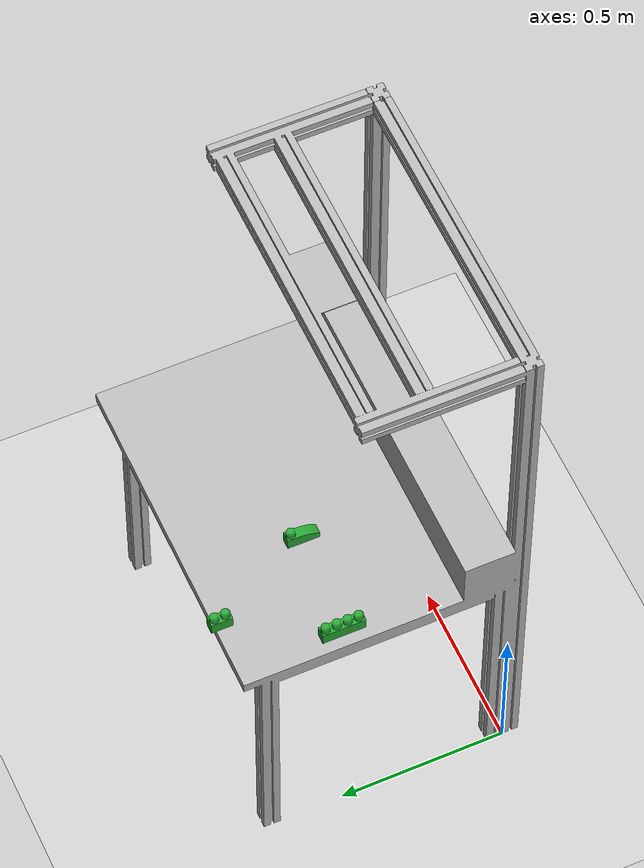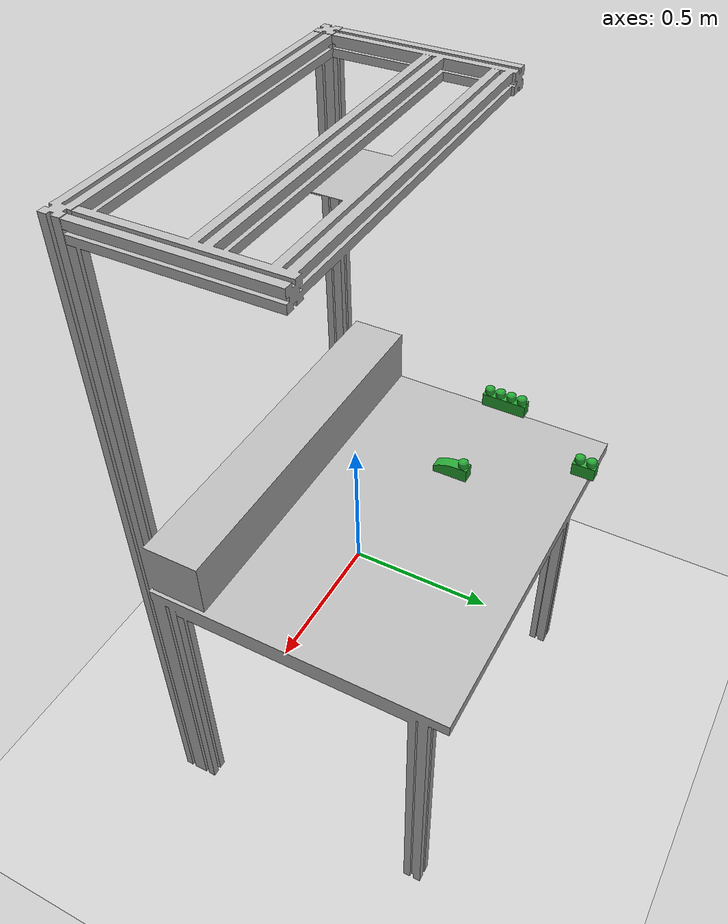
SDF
<sdf version="1.4">
  <world name="default">
    <physics type="ode">
      <gravity>0 0 -9.81</gravity>

      <max_step_size>0.001</max_step_size>
      <real_time_factor>1</real_time_factor>
    </physics>

    <include>
      <uri>model://sun</uri>
    </include>

    <gui>
    <camera name="gzclient_camera">
      <pose>1. 3.2 2.2 0. 0.4 -1.75</pose>
    </camera>
    </gui>

    <include>
      <uri>model://ground_plane</uri>
    </include>
    <include>
      <name>tavolo</name>
      <uri>model://tavolo</uri>
      <pose>0.0 0.0 0.0 0 0 0</pose>
    </include>

    <include>
      <name>X1-Y2-Z2</name>
      <uri>model://X1-Y2-Z2</uri>

      <pose>0.16 0.79 0.9 0 0 0</pose>
    </include>

    <include>
      <name>X1-Y3-Z2-FILLET</name>
      <uri>model://X1-Y3-Z2-FILLET</uri>

      <pose>0.32 0.48 0.9 0 0 0</pose>
    </include>

    <include>
      <name>X1-Y4-Z2</name>
      <uri>model://X1-Y4-Z2</uri>

      <pose>0.01 0.5 0.9 0 0 0</pose>
    </include>

  </world>
</sdf>

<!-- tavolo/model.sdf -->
<sdf version="1.4">

<physics type="ode">

      <ode>

        <constraints>
          <contact_max_correcting_vel>0.1</contact_max_correcting_vel>
          <contact_surface_layer>0.0001</contact_surface_layer>
        </constraints>
      </ode>
	<max_contacts>10</max_contacts>
	</physics>

	<model name="tavolo">
	    <static>true</static>
		<link name="link">

		     <collision name="base">
			<pose>0.5 0.4 0.85 0 0 0</pose>
			<geometry>
			  <box>
			    <size>1 0.8 0.04</size>
			  </box>
			</geometry>

				<!-- see https://gazebosim.org/tutorials?tut=physics_params&cat=physics-->
				 <surface>
				  <bounce>
				    <restitution_coefficient>0.01</restitution_coefficient>
				    <threshold>5.0</threshold>
				  </bounce>
				  <friction>
				    <ode>
				      <mu>10</mu>
				      <mu2>10</mu2>
				    </ode>
				  </friction>
				  <contact>
				     <ode>
					<max_vel>0.1</max_vel>
					<min_depth>0.001</min_depth>
				        <kp>1000000.0</kp>
					<kd>1000.0</kd>
				      </ode>
			            </contact>
				</surface>

		     	</collision>

	     			<collision name="box">
				<pose>0.5 0.08 0.95 0 0 0</pose>
				<geometry>
				  <box>
				    <size>1 0.15 0.15</size>
				  </box>
				</geometry>

				 <surface>
				  <bounce>
				    <restitution_coefficient>0.01</restitution_coefficient>
				    <threshold>5.0</threshold>
				  </bounce>
				  <friction>
				    <ode>
				      <mu>10</mu>
				      <mu2>10</mu2>
				    </ode>
				  </friction>
				  <contact>
				     <ode>
					<max_vel>0.1</max_vel>
					<min_depth>0.001</min_depth>
				        <kp>1000000.0</kp>
					<kd>1000.0</kd>
				      </ode>
			            </contact>
				</surface>

			      </collision>

			   <collision name="back">
				<pose>0.5 -0.02 1.35 1.57 0 0</pose>
				<geometry>
				  <box>
				    <size>1 1.0 0.04</size>
				  </box>
				</geometry>

				 <surface>
				  <bounce>
				    <restitution_coefficient>0.01</restitution_coefficient>
				    <threshold>5.0</threshold>
				  </bounce>
				  <friction>
				    <ode>
				      <mu>10</mu>
				      <mu2>10</mu2>
				    </ode>
				  </friction>
				  <contact>
				     <ode>
					<max_vel>0.1</max_vel>
					<min_depth>0.001</min_depth>
				        <kp>1000000.0</kp>
					<kd>1000.0</kd>
				      </ode>
			            </contact>
				</surface>

			      </collision>

			<visual name="visual">
				<geometry>
					<mesh>
						<uri>model://tavolo/mesh/tavolo.stl</uri>
                                                <scale>0.001 0.001 0.001</scale>
					</mesh>
				</geometry>
			</visual>
		</link>
	</model>
</sdf>

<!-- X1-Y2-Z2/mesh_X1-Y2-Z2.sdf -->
<sdf version="1.6">

         <model name="mesh_X1-Y2-Z2">
             <static>0</static>
             <self_collide>0</self_collide>
             <allow_auto_disable>1</allow_auto_disable>

            <pose>0 0 0 0 -0 0</pose>

             <link name="link">

                 <gravity>1</gravity>
                 <self_collide>0</self_collide>
                 <kinematic>0</kinematic>

                 <inertial>
                    <!-- Volume:  1.4626929000e-05 -->
                    <mass> 1.0 </mass>

                    <!-- Center of mass:  9.6000000000e-07  5.6000000000e-07  2.8797740000e-02 -->
                    <pose>  9.6000000000e-07  5.6000000000e-07  2.8797740000e-02 0 0 0 </pose>

                    <!-- Inertia matrix -->
                    <inertia>
                        <ixx>  6.8430237133e-04 </ixx>
                        <ixy>  3.0149869463e-09 </ixy>
                        <ixz> -1.8746245367e-08 </ixz>
                        <iyy>  3.9997040390e-04 </iyy>
                        <iyz> -1.6298704943e-08 </iyz>
                        <izz>  5.4460814707e-04 </izz>
                    </inertia>
                </inertial>

                 <collision name="collision">
                     <!--
                         Maximum number of contacts allowed between two entities.
                         This value overrides the max_contacts element defined in physics.
                     -->
                     <max_contacts>20</max_contacts>

                    <pose>0 0 0 0 -0 0</pose>

                     <geometry>
                         <mesh>
                             <uri>model://X1-Y2-Z2/mesh.stl</uri>
                             <!-- Scaling factor applied to the mesh -->
                             <scale>1.0 1.0 1.0</scale>
                         </mesh>
                     </geometry>
                     <!-- http://sdformat.org/spec?ver=1.6&elem=collision#surface_soft_contact -->
                     <surface></surface>
                 </collision>

                 <visual name="visual">
                     <cast_shadows>1</cast_shadows>
                     <transparency>0</transparency>

                   <pose>0 0 0 0 -0 0</pose>

                     <material>

                         <script>
                             <uri>file://media/materials/scripts/gazebo.material</uri>
                             <name>Gazebo/Green</name>
                         </script>
                         <shader type="vertex">
                           <normal_map>__default__</normal_map>
                         </shader>

                         <lighting>1</lighting>
 		                <ambient>0.15 0.75 0.35 1</ambient>
 		                <diffuse>0.1 0.95 0.25 1</diffuse>
 		                <specular>0.01 0.01 0.01 1</specular>
 		                <emissive>0 0 0 1</emissive>
                     </material>

                     <geometry>
                         <mesh>
                             <uri>model://X1-Y2-Z2/mesh/X1-Y2-Z2.stl</uri>
                             <!-- Scaling factor applied to the mesh -->
                             <scale>1.0 1.0 1.0</scale>
                         </mesh>
                     </geometry>
                 </visual>
             </link>
         </model>
     </sdf>

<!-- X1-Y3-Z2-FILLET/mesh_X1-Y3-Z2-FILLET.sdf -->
<sdf version="1.6">

         <model name="mesh">
             <static>0</static>
             <self_collide>0</self_collide>
             <allow_auto_disable>1</allow_auto_disable>

             <pose>0 0 0 0 -0 0</pose>

             <link name="link">

                 <gravity>1</gravity>
                 <self_collide>0</self_collide>
                 <kinematic>0</kinematic>

               <pose>0 0 0 0 -0 0</pose>

                <inertial>
                    <!-- Volume:  1.6419476000e-05 -->
                    <mass> 1.0 </mass>

                    <!-- Center of mass: -2.3000000000e-07  6.7072100000e-03  2.3563900000e-02 -->
                    <pose> -2.3000000000e-07  6.7072100000e-03  2.3563900000e-02 0 0 0 </pose>

                    <!-- Inertia matrix -->
                    <inertia>
                        <ixx>  1.0341730820e-03 </ixx>
                        <ixy> -1.6151550756e-08 </ixy>
                        <ixz> -3.3374999300e-09 </ixz>
                        <iyy>  3.4911014213e-04 </iyy>
                        <iyz> -1.3833746582e-04 </iyz>
                        <izz>  9.6627051314e-04 </izz>
                    </inertia>
                </inertial>

                 <collision name="collision">
                     <!--
                         Maximum number of contacts allowed between two entities.
                         This value overrides the max_contacts element defined in physics.
                     -->
                     <max_contacts>20</max_contacts>

                    <pose>0 0 0 0 -0 0</pose>

                     <geometry>
                         <mesh>
                             <uri>model://X1-Y3-Z2-FILLET/mesh.stl</uri>
                             <!-- Scaling factor applied to the mesh -->
                             <scale>1.0 1.0 1.0</scale>
                         </mesh>
                     </geometry>
                     <!-- http://sdformat.org/spec?ver=1.6&elem=collision#surface_soft_contact -->
                     <surface></surface>
                 </collision>

                 <visual name="visual">
                     <cast_shadows>1</cast_shadows>
                     <transparency>0</transparency>

                     <pose>0 0 0 0 -0 0</pose>

                     <material>

                         <script>
                             <uri>file://media/materials/scripts/gazebo.material</uri>
                             <name>Gazebo/Green</name>
                         </script>
                         <shader type="vertex">
                           <normal_map>__default__</normal_map>
                         </shader>

                         <lighting>1</lighting>
 		                <ambient>0.15 0.75 0.35 1</ambient>
 		                <diffuse>0.1 0.95 0.25 1</diffuse>
 		                <specular>0.01 0.01 0.01 1</specular>
 		                <emissive>0 0 0 1</emissive>
                     </material>

                     <geometry>
                         <mesh>
                             <uri>model://X1-Y3-Z2-FILLET/mesh/X1-Y3-Z2-FILLET.stl</uri>
                             <!-- Scaling factor applied to the mesh -->
                             <scale>1.0 1.0 1.0</scale>
                         </mesh>
                     </geometry>
                 </visual>
             </link>
         </model>
     </sdf>

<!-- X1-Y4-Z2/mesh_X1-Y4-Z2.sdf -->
<sdf version="1.6">

         <model name="mesh_X1-Y4-Z2">
             <static>0</static>
             <self_collide>0</self_collide>
             <allow_auto_disable>1</allow_auto_disable>

            <pose>0 0 0 0 -0 0</pose>

             <link name="link">

                 <gravity>1</gravity>
                 <self_collide>0</self_collide>
                 <kinematic>0</kinematic>

                <pose>0 0 0 0 -0 0</pose>

                <inertial>
                    <!-- Volume:  2.8117754000e-05 -->
                    <mass> 1.0 </mass>

                    <!-- Center of mass: -4.0000000000e-08 -1.8759000000e-04  2.9235880000e-02 -->
                    <pose> -4.0000000000e-08 -1.8759000000e-04  2.9235880000e-02 0 0 0 </pose>

                    <!-- Inertia matrix -->
                    <inertia>
                        <ixx>  1.7712896805e-03 </ixx>
                        <ixy> -7.1129436583e-12 </ixy>
                        <ixz>  9.6736033753e-10 </ixz>
                        <iyy>  4.0430172694e-04 </iyy>
                        <iyz> -2.0788538089e-06 </iyz>
                        <izz>  1.6332190615e-03 </izz>
                    </inertia>
                </inertial>

                 <collision name="collision">
                     <!--
                         Maximum number of contacts allowed between two entities.
                         This value overrides the max_contacts element defined in physics.
                     -->
                     <max_contacts>20</max_contacts>

                    <pose>0 0 0 0 -0 0</pose>

                     <geometry>
                         <mesh>
                             <uri>model://X1-Y4-Z2/mesh.stl</uri>
                             <!-- Scaling factor applied to the mesh -->
                             <scale>1.0 1.0 1.0</scale>
                         </mesh>
                     </geometry>
                     <!-- http://sdformat.org/spec?ver=1.6&elem=collision#surface_soft_contact -->
                     <surface></surface>
                 </collision>

                 <visual name="visual">
                     <cast_shadows>1</cast_shadows>
                     <transparency>0</transparency>

                     <pose>0 0 0 0 -0 0</pose>

                     <material>

                         <script>
                             <uri>file://media/materials/scripts/gazebo.material</uri>
                             <name>Gazebo/Green</name>
                         </script>
                         <shader type="vertex">
                           <normal_map>__default__</normal_map>
                         </shader>

                         <lighting>1</lighting>
 		                <ambient>0.15 0.75 0.35 1</ambient>
 		                <diffuse>0.1 0.95 0.25 1</diffuse>
 		                <specular>0.01 0.01 0.01 1</specular>
 		                <emissive>0 0 0 1</emissive>
                     </material>

                     <geometry>
                         <mesh>
                             <uri>model://X1-Y4-Z2/mesh/X1-Y4-Z2.stl</uri>
                             <!-- Scaling factor applied to the mesh -->
                             <scale>1.0 1.0 1.0</scale>
                         </mesh>
                     </geometry>
                 </visual>
             </link>
         </model>
     </sdf>
